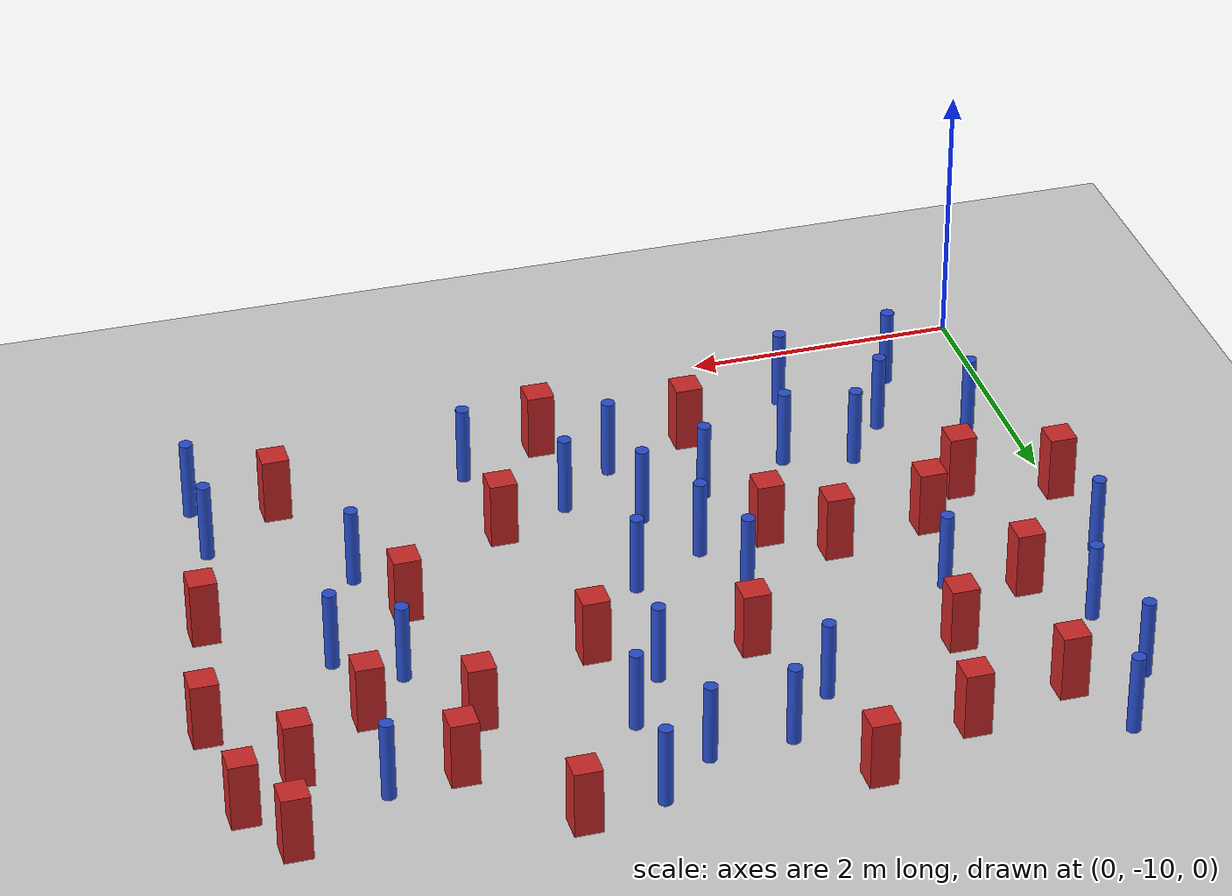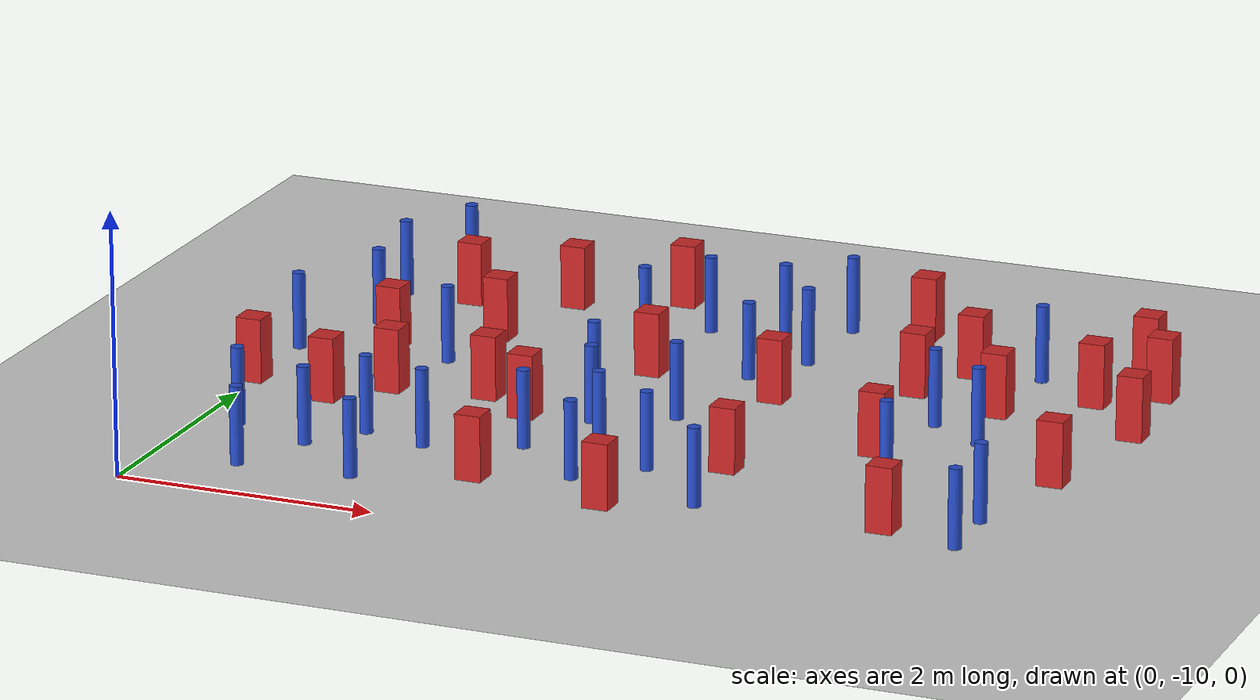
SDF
<sdf version="1.6">
 <world name="default">
  <model name="ground_plane">
   <static>1</static>
   <link name="link">
    <collision name="collision">
     <geometry><plane><normal>0 0 1</normal><size>100 100</size></plane></geometry>
     <surface><friction><ode><mu>100</mu><mu2>50</mu2></ode></friction></surface>
    </collision>
    <visual name="visual">
     <cast_shadows>0</cast_shadows>
     <geometry><plane><normal>0 0 1</normal><size>100 100</size></plane></geometry>
     <material>
      <ambient>1.0 1.0 1.0 1.0</ambient>
      <diffuse>0.8 0.8 0.8 1.0</diffuse>
      <specular>0.01 0.01 0.01 1.000000</specular>
     </material>
    </visual>
   </link>
  </model>
  <model name="pole_obstacle3">
   <static>true</static>
   <pose>3.68952256595 -5.76837566407 -9.47619616065e-06 5.49618799738e-07 2.3631041406e-07 -1.55090534801e-07</pose>
   <link name="link">
    <pose>0 0 0.3 0 -0 0</pose>
    <inertial>
     <mass>1</mass>
     <inertia><ixx>0.145833</ixx><ixy>0</ixy><ixz>0</ixz><iyy>0.145833</iyy><iyz>0</iyz><izz>0.125</izz></inertia>
    </inertial>
    <collision name="collision">
     <geometry><cylinder><radius>0.05</radius><length>.6</length></cylinder></geometry>
    </collision>
    <visual name="visual">
     <geometry><cylinder><radius>0.05</radius><length>.6</length></cylinder></geometry>
     <material>
      <script><name>Gazebo/Blue</name><uri>file://media/materials/scripts/gazebo.material</uri></script>
     </material>
    </visual>
   </link>
  </model>
  <model name="pole_obstacle4">
   <static>true</static>
   <pose>2.72592543453 -5.32273102294 -9.47619616065e-06 5.49618799738e-07 2.3631041406e-07 -1.55090534801e-07</pose>
   <link name="link">
    <pose>0 0 0.3 0 -0 0</pose>
    <inertial>
     <mass>1</mass>
     <inertia><ixx>0.145833</ixx><ixy>0</ixy><ixz>0</ixz><iyy>0.145833</iyy><iyz>0</iyz><izz>0.125</izz></inertia>
    </inertial>
    <collision name="collision">
     <geometry><cylinder><radius>0.05</radius><length>.6</length></cylinder></geometry>
    </collision>
    <visual name="visual">
     <geometry><cylinder><radius>0.05</radius><length>.6</length></cylinder></geometry>
     <material>
      <script><name>Gazebo/Blue</name><uri>file://media/materials/scripts/gazebo.material</uri></script>
     </material>
    </visual>
   </link>
  </model>
  <model name="pole_obstacle6">
   <static>true</static>
   <pose>-0.0224886271966 -6.85687499637 -9.47619616065e-06 5.49618799737e-07 2.36310414067e-07 -1.55090534797e-07</pose>
   <link name="link">
    <pose>0 0 0.3 0 -0 0</pose>
    <inertial>
     <mass>1</mass>
     <inertia><ixx>0.145833</ixx><ixy>0</ixy><ixz>0</ixz><iyy>0.145833</iyy><iyz>0</iyz><izz>0.125</izz></inertia>
    </inertial>
    <collision name="collision">
     <geometry><cylinder><radius>0.05</radius><length>.6</length></cylinder></geometry>
    </collision>
    <visual name="visual">
     <geometry><cylinder><radius>0.05</radius><length>.6</length></cylinder></geometry>
     <material>
      <script><name>Gazebo/Blue</name><uri>file://media/materials/scripts/gazebo.material</uri></script>
     </material>
    </visual>
   </link>
  </model>
  <model name="square_post_obstacle14">
   <static>true</static>
   <pose>1.53295186414 -5.11848974864 -6.11067671241e-07 -5.50515727128e-06 -8.79689657224e-07 2.37013304536e-05</pose>
   <link name="link">
    <pose>0 0 0.25 0 -0 0</pose>
    <inertial>
     <mass>100</mass>
     <inertia>
      <ixx>0.166667</ixx>
      <ixy>0</ixy>
      <ixz>0</ixz>
      <iyy>0.166667</iyy>
      <iyz>0</iyz>
      <izz>0.166667</izz>
     </inertia>
    </inertial>
    <collision name="collision"><geometry><box><size>.2 .2 .5</size></box></geometry></collision>
    <visual name="visual">
     <geometry><box><size>.2 .2 .5</size></box></geometry>
     <material>
      <script><name>Gazebo/Red</name><uri>file://media/materials/scripts/gazebo.material</uri></script>
     </material>
    </visual>
   </link>
  </model>
  <model name="square_post_obstacle22">
   <static>true</static>
   <pose>5.39535060356 -6.3227671218 -6.11067671241e-07 -5.50515727128e-06 -8.79689657224e-07 2.37013304536e-05</pose>
   <link name="link">
    <pose>0 0 0.25 0 -0 0</pose>
    <inertial>
     <mass>100</mass>
     <inertia>
      <ixx>0.166667</ixx>
      <ixy>0</ixy>
      <ixz>0</ixz>
      <iyy>0.166667</iyy>
      <iyz>0</iyz>
      <izz>0.166667</izz>
     </inertia>
    </inertial>
    <collision name="collision"><geometry><box><size>.2 .2 .5</size></box></geometry></collision>
    <visual name="visual">
     <geometry><box><size>.2 .2 .5</size></box></geometry>
     <material>
      <script><name>Gazebo/Red</name><uri>file://media/materials/scripts/gazebo.material</uri></script>
     </material>
    </visual>
   </link>
  </model>
  <model name="pole_obstacle14">
   <static>true</static>
   <pose>2.49761669103 -7.08939862629 -9.47619616065e-06 5.49618799738e-07 2.3631041406e-07 -1.55090534801e-07</pose>
   <link name="link">
    <pose>0 0 0.3 0 -0 0</pose>
    <inertial>
     <mass>1</mass>
     <inertia><ixx>0.145833</ixx><ixy>0</ixy><ixz>0</ixz><iyy>0.145833</iyy><iyz>0</iyz><izz>0.125</izz></inertia>
    </inertial>
    <collision name="collision">
     <geometry><cylinder><radius>0.05</radius><length>.6</length></cylinder></geometry>
    </collision>
    <visual name="visual">
     <geometry><cylinder><radius>0.05</radius><length>.6</length></cylinder></geometry>
     <material>
      <script><name>Gazebo/Blue</name><uri>file://media/materials/scripts/gazebo.material</uri></script>
     </material>
    </visual>
   </link>
  </model>
  <model name="square_post_obstacle31">
   <static>true</static>
   <pose>6.41488071471 -5.52194139991 -6.11067671241e-07 -5.50515727128e-06 -8.79689657224e-07 2.37013304536e-05</pose>
   <link name="link">
    <pose>0 0 0.25 0 -0 0</pose>
    <inertial>
     <mass>100</mass>
     <inertia>
      <ixx>0.166667</ixx>
      <ixy>0</ixy>
      <ixz>0</ixz>
      <iyy>0.166667</iyy>
      <iyz>0</iyz>
      <izz>0.166667</izz>
     </inertia>
    </inertial>
    <collision name="collision"><geometry><box><size>.2 .2 .5</size></box></geometry></collision>
    <visual name="visual">
     <geometry><box><size>.2 .2 .5</size></box></geometry>
     <material>
      <script><name>Gazebo/Red</name><uri>file://media/materials/scripts/gazebo.material</uri></script>
     </material>
    </visual>
   </link>
  </model>
  <model name="pole_obstacle36">
   <static>true</static>
   <pose>5.49110034325 -7.01529308881 -9.47619616065e-06 5.49618799737e-07 2.36310414037e-07 -1.55090534814e-07</pose>
   <link name="link">
    <pose>0 0 0.3 0 -0 0</pose>
    <inertial>
     <mass>1</mass>
     <inertia><ixx>0.145833</ixx><ixy>0</ixy><ixz>0</ixz><iyy>0.145833</iyy><iyz>0</iyz><izz>0.125</izz></inertia>
    </inertial>
    <collision name="collision">
     <geometry><cylinder><radius>0.05</radius><length>.6</length></cylinder></geometry>
    </collision>
    <visual name="visual">
     <geometry><cylinder><radius>0.05</radius><length>.6</length></cylinder></geometry>
     <material>
      <script><name>Gazebo/Blue</name><uri>file://media/materials/scripts/gazebo.material</uri></script>
     </material>
    </visual>
   </link>
  </model>
  <model name="square_post_obstacle36">
   <static>true</static>
   <pose>3.99212517721 -8.19487480356 -6.11067671241e-07 -5.50515727128e-06 -8.79689657224e-07 2.37013304536e-05</pose>
   <link name="link">
    <pose>0 0 0.25 0 -0 0</pose>
    <inertial>
     <mass>100</mass>
     <inertia>
      <ixx>0.166667</ixx>
      <ixy>0</ixy>
      <ixz>0</ixz>
      <iyy>0.166667</iyy>
      <iyz>0</iyz>
      <izz>0.166667</izz>
     </inertia>
    </inertial>
    <collision name="collision"><geometry><box><size>.2 .2 .5</size></box></geometry></collision>
    <visual name="visual">
     <geometry><box><size>.2 .2 .5</size></box></geometry>
     <material>
      <script><name>Gazebo/Red</name><uri>file://media/materials/scripts/gazebo.material</uri></script>
     </material>
    </visual>
   </link>
  </model>
  <model name="pole_obstacle38">
   <static>true</static>
   <pose>0.296966078168 -6.09641733267 -9.47619616065e-06 5.49618799737e-07 2.36310414067e-07 -1.55090534795e-07</pose>
   <link name="link">
    <pose>0 0 0.3 0 -0 0</pose>
    <inertial>
     <mass>1</mass>
     <inertia><ixx>0.145833</ixx><ixy>0</ixy><ixz>0</ixz><iyy>0.145833</iyy><iyz>0</iyz><izz>0.125</izz></inertia>
    </inertial>
    <collision name="collision">
     <geometry><cylinder><radius>0.05</radius><length>.6</length></cylinder></geometry>
    </collision>
    <visual name="visual">
     <geometry><cylinder><radius>0.05</radius><length>.6</length></cylinder></geometry>
     <material>
      <script><name>Gazebo/Blue</name><uri>file://media/materials/scripts/gazebo.material</uri></script>
     </material>
    </visual>
   </link>
  </model>
  <model name="square_post_obstacle41">
   <static>true</static>
   <pose>1.75843619097 -7.35909987337 -6.11067671241e-07 -5.50515727128e-06 -8.79689657224e-07 2.37013304536e-05</pose>
   <link name="link">
    <pose>0 0 0.25 0 -0 0</pose>
    <inertial>
     <mass>100</mass>
     <inertia>
      <ixx>0.166667</ixx>
      <ixy>0</ixy>
      <ixz>0</ixz>
      <iyy>0.166667</iyy>
      <iyz>0</iyz>
      <izz>0.166667</izz>
     </inertia>
    </inertial>
    <collision name="collision"><geometry><box><size>.2 .2 .5</size></box></geometry></collision>
    <visual name="visual">
     <geometry><box><size>.2 .2 .5</size></box></geometry>
     <material>
      <script><name>Gazebo/Red</name><uri>file://media/materials/scripts/gazebo.material</uri></script>
     </material>
    </visual>
   </link>
  </model>
  <model name="square_post_obstacle42">
   <static>true</static>
   <pose>2.67477833466 -6.40167193319 -6.11067671241e-07 -5.50515727128e-06 -8.79689657224e-07 2.37013304536e-05</pose>
   <link name="link">
    <pose>0 0 0.25 0 -0 0</pose>
    <inertial>
     <mass>100</mass>
     <inertia>
      <ixx>0.166667</ixx>
      <ixy>0</ixy>
      <ixz>0</ixz>
      <iyy>0.166667</iyy>
      <iyz>0</iyz>
      <izz>0.166667</izz>
     </inertia>
    </inertial>
    <collision name="collision"><geometry><box><size>.2 .2 .5</size></box></geometry></collision>
    <visual name="visual">
     <geometry><box><size>.2 .2 .5</size></box></geometry>
     <material>
      <script><name>Gazebo/Red</name><uri>file://media/materials/scripts/gazebo.material</uri></script>
     </material>
    </visual>
   </link>
  </model>
  <model name="pole_obstacle54">
   <static>true</static>
   <pose>6.06947348245 -9.11279143797 -9.47619616065e-06 5.49618799737e-07 2.36310414065e-07 -1.55090534796e-07</pose>
   <link name="link">
    <pose>0 0 0.3 0 -0 0</pose>
    <inertial>
     <mass>1</mass>
     <inertia><ixx>0.145833</ixx><ixy>0</ixy><ixz>0</ixz><iyy>0.145833</iyy><iyz>0</iyz><izz>0.125</izz></inertia>
    </inertial>
    <collision name="collision">
     <geometry><cylinder><radius>0.05</radius><length>.6</length></cylinder></geometry>
    </collision>
    <visual name="visual">
     <geometry><cylinder><radius>0.05</radius><length>.6</length></cylinder></geometry>
     <material>
      <script><name>Gazebo/Blue</name><uri>file://media/materials/scripts/gazebo.material</uri></script>
     </material>
    </visual>
   </link>
  </model>
  <model name="pole_obstacle58">
   <static>true</static>
   <pose>0.939054772979 -8.83326619158 -9.47619616065e-06 5.49618799737e-07 2.36310414038e-07 -1.55090534813e-07</pose>
   <link name="link">
    <pose>0 0 0.3 0 -0 0</pose>
    <inertial>
     <mass>1</mass>
     <inertia><ixx>0.145833</ixx><ixy>0</ixy><ixz>0</ixz><iyy>0.145833</iyy><iyz>0</iyz><izz>0.125</izz></inertia>
    </inertial>
    <collision name="collision">
     <geometry><cylinder><radius>0.05</radius><length>.6</length></cylinder></geometry>
    </collision>
    <visual name="visual">
     <geometry><cylinder><radius>0.05</radius><length>.6</length></cylinder></geometry>
     <material>
      <script><name>Gazebo/Blue</name><uri>file://media/materials/scripts/gazebo.material</uri></script>
     </material>
    </visual>
   </link>
  </model>
  <model name="square_post_obstacle74">
   <static>true</static>
   <pose>5.47576698785 -8.95069101723 -6.11067671241e-07 -5.50515727128e-06 -8.79689657224e-07 2.37013304536e-05</pose>
   <link name="link">
    <pose>0 0 0.25 0 -0 0</pose>
    <inertial>
     <mass>100</mass>
     <inertia>
      <ixx>0.166667</ixx>
      <ixy>0</ixy>
      <ixz>0</ixz>
      <iyy>0.166667</iyy>
      <iyz>0</iyz>
      <izz>0.166667</izz>
     </inertia>
    </inertial>
    <collision name="collision"><geometry><box><size>.2 .2 .5</size></box></geometry></collision>
    <visual name="visual">
     <geometry><box><size>.2 .2 .5</size></box></geometry>
     <material>
      <script><name>Gazebo/Red</name><uri>file://media/materials/scripts/gazebo.material</uri></script>
     </material>
    </visual>
   </link>
  </model>
  <model name="pole_obstacle73">
   <static>true</static>
   <pose>4.06406030413 -9.00445187488 -9.47619616065e-06 5.49618799737e-07 2.36310414065e-07 -1.55090534796e-07</pose>
   <link name="link">
    <pose>0 0 0.3 0 -0 0</pose>
    <inertial>
     <mass>1</mass>
     <inertia><ixx>0.145833</ixx><ixy>0</ixy><ixz>0</ixz><iyy>0.145833</iyy><iyz>0</iyz><izz>0.125</izz></inertia>
    </inertial>
    <collision name="collision">
     <geometry><cylinder><radius>0.05</radius><length>.6</length></cylinder></geometry>
    </collision>
    <visual name="visual">
     <geometry><cylinder><radius>0.05</radius><length>.6</length></cylinder></geometry>
     <material>
      <script><name>Gazebo/Blue</name><uri>file://media/materials/scripts/gazebo.material</uri></script>
     </material>
    </visual>
   </link>
  </model>
  <model name="pole_obstacle79">
   <static>true</static>
   <pose>2.68920330358 -7.603578546 -9.47619616065e-06 5.49618799738e-07 2.3631041406e-07 -1.55090534801e-07</pose>
   <link name="link">
    <pose>0 0 0.3 0 -0 0</pose>
    <inertial>
     <mass>1</mass>
     <inertia><ixx>0.145833</ixx><ixy>0</ixy><ixz>0</ixz><iyy>0.145833</iyy><iyz>0</iyz><izz>0.125</izz></inertia>
    </inertial>
    <collision name="collision">
     <geometry><cylinder><radius>0.05</radius><length>.6</length></cylinder></geometry>
    </collision>
    <visual name="visual">
     <geometry><cylinder><radius>0.05</radius><length>.6</length></cylinder></geometry>
     <material>
      <script><name>Gazebo/Blue</name><uri>file://media/materials/scripts/gazebo.material</uri></script>
     </material>
    </visual>
   </link>
  </model>
  <model name="pole_obstacle84">
   <static>true</static>
   <pose>1.75918652986 -8.56352422376 -9.47619616065e-06 5.49618799737e-07 2.36310414046e-07 -1.55090534809e-07</pose>
   <link name="link">
    <pose>0 0 0.3 0 -0 0</pose>
    <inertial>
     <mass>1</mass>
     <inertia><ixx>0.145833</ixx><ixy>0</ixy><ixz>0</ixz><iyy>0.145833</iyy><iyz>0</iyz><izz>0.125</izz></inertia>
    </inertial>
    <collision name="collision">
     <geometry><cylinder><radius>0.05</radius><length>.6</length></cylinder></geometry>
    </collision>
    <visual name="visual">
     <geometry><cylinder><radius>0.05</radius><length>.6</length></cylinder></geometry>
     <material>
      <script><name>Gazebo/Blue</name><uri>file://media/materials/scripts/gazebo.material</uri></script>
     </material>
    </visual>
   </link>
  </model>
  <model name="pole_obstacle85">
   <static>true</static>
   <pose>1.25535044332 -8.4408367496 -9.47619616065e-06 5.49618799737e-07 2.36310414046e-07 -1.55090534809e-07</pose>
   <link name="link">
    <pose>0 0 0.3 0 -0 0</pose>
    <inertial>
     <mass>1</mass>
     <inertia><ixx>0.145833</ixx><ixy>0</ixy><ixz>0</ixz><iyy>0.145833</iyy><iyz>0</iyz><izz>0.125</izz></inertia>
    </inertial>
    <collision name="collision">
     <geometry><cylinder><radius>0.05</radius><length>.6</length></cylinder></geometry>
    </collision>
    <visual name="visual">
     <geometry><cylinder><radius>0.05</radius><length>.6</length></cylinder></geometry>
     <material>
      <script><name>Gazebo/Blue</name><uri>file://media/materials/scripts/gazebo.material</uri></script>
     </material>
    </visual>
   </link>
  </model>
  <model name="pole_obstacle90">
   <static>true</static>
   <pose>2.44946880709 -8.30420754608 -9.4761961606e-06 5.49618799729e-07 2.36310414e-07 -1.55090534824e-07</pose>
   <link name="link">
    <pose>0 0 0.3 0 -0 0</pose>
    <inertial>
     <mass>1</mass>
     <inertia><ixx>0.145833</ixx><ixy>0</ixy><ixz>0</ixz><iyy>0.145833</iyy><iyz>0</iyz><izz>0.125</izz></inertia>
    </inertial>
    <collision name="collision">
     <geometry><cylinder><radius>0.05</radius><length>.6</length></cylinder></geometry>
    </collision>
    <visual name="visual">
     <geometry><cylinder><radius>0.05</radius><length>.6</length></cylinder></geometry>
     <material>
      <script><name>Gazebo/Blue</name><uri>file://media/materials/scripts/gazebo.material</uri></script>
     </material>
    </visual>
   </link>
  </model>
  <model name="pole_obstacle91">
   <static>true</static>
   <pose>3.2431976997 -7.30107362504 -9.47619616065e-06 5.49618799738e-07 2.3631041406e-07 -1.55090534801e-07</pose>
   <link name="link">
    <pose>0 0 0.3 0 -0 0</pose>
    <inertial>
     <mass>1</mass>
     <inertia><ixx>0.145833</ixx><ixy>0</ixy><ixz>0</ixz><iyy>0.145833</iyy><iyz>0</iyz><izz>0.125</izz></inertia>
    </inertial>
    <collision name="collision">
     <geometry><cylinder><radius>0.05</radius><length>.6</length></cylinder></geometry>
    </collision>
    <visual name="visual">
     <geometry><cylinder><radius>0.05</radius><length>.6</length></cylinder></geometry>
     <material>
      <script><name>Gazebo/Blue</name><uri>file://media/materials/scripts/gazebo.material</uri></script>
     </material>
    </visual>
   </link>
  </model>
  <model name="pole_obstacle92">
   <static>true</static>
   <pose>2.96707711484 -8.12069190604 -9.4761961606e-06 5.49618799729e-07 2.36310414e-07 -1.55090534824e-07</pose>
   <link name="link">
    <pose>0 0 0.3 0 -0 0</pose>
    <inertial>
     <mass>1</mass>
     <inertia><ixx>0.145833</ixx><ixy>0</ixy><ixz>0</ixz><iyy>0.145833</iyy><iyz>0</iyz><izz>0.125</izz></inertia>
    </inertial>
    <collision name="collision">
     <geometry><cylinder><radius>0.05</radius><length>.6</length></cylinder></geometry>
    </collision>
    <visual name="visual">
     <geometry><cylinder><radius>0.05</radius><length>.6</length></cylinder></geometry>
     <material>
      <script><name>Gazebo/Blue</name><uri>file://media/materials/scripts/gazebo.material</uri></script>
     </material>
    </visual>
   </link>
  </model>
  <model name="pole_obstacle93">
   <static>true</static>
   <pose>3.39663855941 -6.2433627364 -9.47619616065e-06 5.49618799738e-07 2.3631041406e-07 -1.55090534801e-07</pose>
   <link name="link">
    <pose>0 0 0.3 0 -0 0</pose>
    <inertial>
     <mass>1</mass>
     <inertia><ixx>0.145833</ixx><ixy>0</ixy><ixz>0</ixz><iyy>0.145833</iyy><iyz>0</iyz><izz>0.125</izz></inertia>
    </inertial>
    <collision name="collision">
     <geometry><cylinder><radius>0.05</radius><length>.6</length></cylinder></geometry>
    </collision>
    <visual name="visual">
     <geometry><cylinder><radius>0.05</radius><length>.6</length></cylinder></geometry>
     <material>
      <script><name>Gazebo/Blue</name><uri>file://media/materials/scripts/gazebo.material</uri></script>
     </material>
    </visual>
   </link>
  </model>
  <model name="pole_obstacle96">
   <static>true</static>
   <pose>0.306442332923 -8.62014487151 -9.47619616065e-06 5.49618799737e-07 2.36310414031e-07 -1.55090534818e-07</pose>
   <link name="link">
    <pose>0 0 0.3 0 -0 0</pose>
    <inertial>
     <mass>1</mass>
     <inertia><ixx>0.145833</ixx><ixy>0</ixy><ixz>0</ixz><iyy>0.145833</iyy><iyz>0</iyz><izz>0.125</izz></inertia>
    </inertial>
    <collision name="collision">
     <geometry><cylinder><radius>0.05</radius><length>.6</length></cylinder></geometry>
    </collision>
    <visual name="visual">
     <geometry><cylinder><radius>0.05</radius><length>.6</length></cylinder></geometry>
     <material>
      <script><name>Gazebo/Blue</name><uri>file://media/materials/scripts/gazebo.material</uri></script>
     </material>
    </visual>
   </link>
  </model>
  <model name="square_post_obstacle84">
   <static>true</static>
   <pose>0.760238394644 -5.33593640148 -6.11067671241e-07 -5.50515727128e-06 -8.79689657224e-07 2.37013304536e-05</pose>
   <link name="link">
    <pose>0 0 0.25 0 -0 0</pose>
    <inertial>
     <mass>100</mass>
     <inertia>
      <ixx>0.166667</ixx>
      <ixy>0</ixy>
      <ixz>0</ixz>
      <iyy>0.166667</iyy>
      <iyz>0</iyz>
      <izz>0.166667</izz>
     </inertia>
    </inertial>
    <collision name="collision"><geometry><box><size>.2 .2 .5</size></box></geometry></collision>
    <visual name="visual">
     <geometry><box><size>.2 .2 .5</size></box></geometry>
     <material>
      <script><name>Gazebo/Red</name><uri>file://media/materials/scripts/gazebo.material</uri></script>
     </material>
    </visual>
   </link>
  </model>
  <model name="pole_obstacle97">
   <static>true</static>
   <pose>1.15483982126 -6.73573322134 -9.47619616065e-06 5.49618799737e-07 2.36310414061e-07 -1.550905348e-07</pose>
   <link name="link">
    <pose>0 0 0.3 0 -0 0</pose>
    <inertial>
     <mass>1</mass>
     <inertia><ixx>0.145833</ixx><ixy>0</ixy><ixz>0</ixz><iyy>0.145833</iyy><iyz>0</iyz><izz>0.125</izz></inertia>
    </inertial>
    <collision name="collision">
     <geometry><cylinder><radius>0.05</radius><length>.6</length></cylinder></geometry>
    </collision>
    <visual name="visual">
     <geometry><cylinder><radius>0.05</radius><length>.6</length></cylinder></geometry>
     <material>
      <script><name>Gazebo/Blue</name><uri>file://media/materials/scripts/gazebo.material</uri></script>
     </material>
    </visual>
   </link>
  </model>
  <model name="square_post_obstacle89">
   <static>true</static>
   <pose>6.26856388387 -7.58559985948 -6.11067671241e-07 -5.50515727128e-06 -8.79689657224e-07 2.37013304536e-05</pose>
   <link name="link">
    <pose>0 0 0.25 0 -0 0</pose>
    <inertial>
     <mass>100</mass>
     <inertia>
      <ixx>0.166667</ixx>
      <ixy>0</ixy>
      <ixz>0</ixz>
      <iyy>0.166667</iyy>
      <iyz>0</iyz>
      <izz>0.166667</izz>
     </inertia>
    </inertial>
    <collision name="collision"><geometry><box><size>.2 .2 .5</size></box></geometry></collision>
    <visual name="visual">
     <geometry><box><size>.2 .2 .5</size></box></geometry>
     <material>
      <script><name>Gazebo/Red</name><uri>file://media/materials/scripts/gazebo.material</uri></script>
     </material>
    </visual>
   </link>
  </model>
  <model name="square_post_obstacle90">
   <static>true</static>
   <pose>0.626417276849 -6.5617396612 -6.11067671241e-07 -5.50515727128e-06 -8.79689657224e-07 2.37013304536e-05</pose>
   <link name="link">
    <pose>0 0 0.25 0 -0 0</pose>
    <inertial>
     <mass>100</mass>
     <inertia>
      <ixx>0.166667</ixx>
      <ixy>0</ixy>
      <ixz>0</ixz>
      <iyy>0.166667</iyy>
      <iyz>0</iyz>
      <izz>0.166667</izz>
     </inertia>
    </inertial>
    <collision name="collision"><geometry><box><size>.2 .2 .5</size></box></geometry></collision>
    <visual name="visual">
     <geometry><box><size>.2 .2 .5</size></box></geometry>
     <material>
      <script><name>Gazebo/Red</name><uri>file://media/materials/scripts/gazebo.material</uri></script>
     </material>
    </visual>
   </link>
  </model>
  <model name="square_post_obstacle96">
   <static>true</static>
   <pose>0.663287669542 -7.85111471644 -6.11067671241e-07 -5.50515727128e-06 -8.79689657224e-07 2.37013304536e-05</pose>
   <link name="link">
    <pose>0 0 0.25 0 -0 0</pose>
    <inertial>
     <mass>100</mass>
     <inertia>
      <ixx>0.166667</ixx>
      <ixy>0</ixy>
      <ixz>0</ixz>
      <iyy>0.166667</iyy>
      <iyz>0</iyz>
      <izz>0.166667</izz>
     </inertia>
    </inertial>
    <collision name="collision"><geometry><box><size>.2 .2 .5</size></box></geometry></collision>
    <visual name="visual">
     <geometry><box><size>.2 .2 .5</size></box></geometry>
     <material>
      <script><name>Gazebo/Red</name><uri>file://media/materials/scripts/gazebo.material</uri></script>
     </material>
    </visual>
   </link>
  </model>
  <model name="pole_obstacle133">
   <static>true</static>
   <pose>5.12789587614 -7.95323270963 -9.47619616065e-06 5.49618799738e-07 2.36310414051e-07 -1.55090534804e-07</pose>
   <link name="link">
    <pose>0 0 0.3 0 -0 0</pose>
    <inertial>
     <mass>1</mass>
     <inertia><ixx>0.145833</ixx><ixy>0</ixy><ixz>0</ixz><iyy>0.145833</iyy><iyz>0</iyz><izz>0.125</izz></inertia>
    </inertial>
    <collision name="collision">
     <geometry><cylinder><radius>0.05</radius><length>.6</length></cylinder></geometry>
    </collision>
    <visual name="visual">
     <geometry><cylinder><radius>0.05</radius><length>.6</length></cylinder></geometry>
     <material>
      <script><name>Gazebo/Blue</name><uri>file://media/materials/scripts/gazebo.material</uri></script>
     </material>
    </visual>
   </link>
  </model>
  <model name="square_post_obstacle122">
   <static>true</static>
   <pose>2.36671958527 -9.03684008959 -6.11067671241e-07 -5.50515727128e-06 -8.79689657224e-07 2.37013304536e-05</pose>
   <link name="link">
    <pose>0 0 0.25 0 -0 0</pose>
    <inertial>
     <mass>100</mass>
     <inertia>
      <ixx>0.166667</ixx>
      <ixy>0</ixy>
      <ixz>0</ixz>
      <iyy>0.166667</iyy>
      <iyz>0</iyz>
      <izz>0.166667</izz>
     </inertia>
    </inertial>
    <collision name="collision"><geometry><box><size>.2 .2 .5</size></box></geometry></collision>
    <visual name="visual">
     <geometry><box><size>.2 .2 .5</size></box></geometry>
     <material>
      <script><name>Gazebo/Red</name><uri>file://media/materials/scripts/gazebo.material</uri></script>
     </material>
    </visual>
   </link>
  </model>
  <model name="square_post_obstacle127">
   <static>true</static>
   <pose>3.74791220726 -6.62882537302 -6.11067671241e-07 -5.50515727128e-06 -8.79689657224e-07 2.37013304536e-05</pose>
   <link name="link">
    <pose>0 0 0.25 0 -0 0</pose>
    <inertial>
     <mass>100</mass>
     <inertia>
      <ixx>0.166667</ixx>
      <ixy>0</ixy>
      <ixz>0</ixz>
      <iyy>0.166667</iyy>
      <iyz>0</iyz>
      <izz>0.166667</izz>
     </inertia>
    </inertial>
    <collision name="collision"><geometry><box><size>.2 .2 .5</size></box></geometry></collision>
    <visual name="visual">
     <geometry><box><size>.2 .2 .5</size></box></geometry>
     <material>
      <script><name>Gazebo/Red</name><uri>file://media/materials/scripts/gazebo.material</uri></script>
     </material>
    </visual>
   </link>
  </model>
  <model name="square_post_obstacle128">
   <static>true</static>
   <pose>2.17887424502 -7.65401673229 -6.11067671241e-07 -5.50515727128e-06 -8.79689657224e-07 2.37013304536e-05</pose>
   <link name="link">
    <pose>0 0 0.25 0 -0 0</pose>
    <inertial>
     <mass>100</mass>
     <inertia>
      <ixx>0.166667</ixx>
      <ixy>0</ixy>
      <ixz>0</ixz>
      <iyy>0.166667</iyy>
      <iyz>0</iyz>
      <izz>0.166667</izz>
     </inertia>
    </inertial>
    <collision name="collision"><geometry><box><size>.2 .2 .5</size></box></geometry></collision>
    <visual name="visual">
     <geometry><box><size>.2 .2 .5</size></box></geometry>
     <material>
      <script><name>Gazebo/Red</name><uri>file://media/materials/scripts/gazebo.material</uri></script>
     </material>
    </visual>
   </link>
  </model>
  <model name="square_post_obstacle129">
   <static>true</static>
   <pose>4.30484090907 -4.83189297443 -6.11067671241e-07 -5.50515727128e-06 -8.79689657224e-07 2.37013304536e-05</pose>
   <link name="link">
    <pose>0 0 0.25 0 -0 0</pose>
    <inertial>
     <mass>100</mass>
     <inertia>
      <ixx>0.166667</ixx>
      <ixy>0</ixy>
      <ixz>0</ixz>
      <iyy>0.166667</iyy>
      <iyz>0</iyz>
      <izz>0.166667</izz>
     </inertia>
    </inertial>
    <collision name="collision"><geometry><box><size>.2 .2 .5</size></box></geometry></collision>
    <visual name="visual">
     <geometry><box><size>.2 .2 .5</size></box></geometry>
     <material>
      <script><name>Gazebo/Red</name><uri>file://media/materials/scripts/gazebo.material</uri></script>
     </material>
    </visual>
   </link>
  </model>
  <model name="square_post_obstacle139">
   <static>true</static>
   <pose>4.94100180102 -5.54954437314 -6.11067671241e-07 -5.50515727128e-06 -8.79689657224e-07 2.37013304536e-05</pose>
   <link name="link">
    <pose>0 0 0.25 0 -0 0</pose>
    <inertial>
     <mass>100</mass>
     <inertia>
      <ixx>0.166667</ixx>
      <ixy>0</ixy>
      <ixz>0</ixz>
      <iyy>0.166667</iyy>
      <iyz>0</iyz>
      <izz>0.166667</izz>
     </inertia>
    </inertial>
    <collision name="collision"><geometry><box><size>.2 .2 .5</size></box></geometry></collision>
    <visual name="visual">
     <geometry><box><size>.2 .2 .5</size></box></geometry>
     <material>
      <script><name>Gazebo/Red</name><uri>file://media/materials/scripts/gazebo.material</uri></script>
     </material>
    </visual>
   </link>
  </model>
  <model name="pole_obstacle149">
   <static>true</static>
   <pose>2.35251180094 -5.73737978438 -9.47619616065e-06 5.49618799738e-07 2.3631041406e-07 -1.55090534801e-07</pose>
   <link name="link">
    <pose>0 0 0.3 0 -0 0</pose>
    <inertial>
     <mass>1</mass>
     <inertia><ixx>0.145833</ixx><ixy>0</ixy><ixz>0</ixz><iyy>0.145833</iyy><iyz>0</iyz><izz>0.125</izz></inertia>
    </inertial>
    <collision name="collision">
     <geometry><cylinder><radius>0.05</radius><length>.6</length></cylinder></geometry>
    </collision>
    <visual name="visual">
     <geometry><cylinder><radius>0.05</radius><length>.6</length></cylinder></geometry>
     <material>
      <script><name>Gazebo/Blue</name><uri>file://media/materials/scripts/gazebo.material</uri></script>
     </material>
    </visual>
   </link>
  </model>
  <model name="pole_obstacle153">
   <static>true</static>
   <pose>5.4538998448 -5.48898073733 -9.47619616065e-06 5.49618799737e-07 2.36310414037e-07 -1.55090534814e-07</pose>
   <link name="link">
    <pose>0 0 0.3 0 -0 0</pose>
    <inertial>
     <mass>1</mass>
     <inertia><ixx>0.145833</ixx><ixy>0</ixy><ixz>0</ixz><iyy>0.145833</iyy><iyz>0</iyz><izz>0.125</izz></inertia>
    </inertial>
    <collision name="collision">
     <geometry><cylinder><radius>0.05</radius><length>.6</length></cylinder></geometry>
    </collision>
    <visual name="visual">
     <geometry><cylinder><radius>0.05</radius><length>.6</length></cylinder></geometry>
     <material>
      <script><name>Gazebo/Blue</name><uri>file://media/materials/scripts/gazebo.material</uri></script>
     </material>
    </visual>
   </link>
  </model>
  <model name="square_post_obstacle143">
   <static>true</static>
   <pose>6.16243156247 -5.08975223422 -6.11067671241e-07 -5.50515727128e-06 -8.79689657224e-07 2.37013304536e-05</pose>
   <link name="link">
    <pose>0 0 0.25 0 -0 0</pose>
    <inertial>
     <mass>100</mass>
     <inertia>
      <ixx>0.166667</ixx>
      <ixy>0</ixy>
      <ixz>0</ixz>
      <iyy>0.166667</iyy>
      <iyz>0</iyz>
      <izz>0.166667</izz>
     </inertia>
    </inertial>
    <collision name="collision"><geometry><box><size>.2 .2 .5</size></box></geometry></collision>
    <visual name="visual">
     <geometry><box><size>.2 .2 .5</size></box></geometry>
     <material>
      <script><name>Gazebo/Red</name><uri>file://media/materials/scripts/gazebo.material</uri></script>
     </material>
    </visual>
   </link>
  </model>
  <model name="pole_obstacle157">
   <static>true</static>
   <pose>1.54506598867 -9.35641855859 -9.47619616065e-06 5.49618799737e-07 2.36310414046e-07 -1.55090534809e-07</pose>
   <link name="link">
    <pose>0 0 0.3 0 -0 0</pose>
    <inertial>
     <mass>1</mass>
     <inertia><ixx>0.145833</ixx><ixy>0</ixy><ixz>0</ixz><iyy>0.145833</iyy><iyz>0</iyz><izz>0.125</izz></inertia>
    </inertial>
    <collision name="collision">
     <geometry><cylinder><radius>0.05</radius><length>.6</length></cylinder></geometry>
    </collision>
    <visual name="visual">
     <geometry><cylinder><radius>0.05</radius><length>.6</length></cylinder></geometry>
     <material>
      <script><name>Gazebo/Blue</name><uri>file://media/materials/scripts/gazebo.material</uri></script>
     </material>
    </visual>
   </link>
  </model>
  <model name="pole_obstacle159">
   <static>true</static>
   <pose>6.05515680634 -8.5467071727 -9.47619616065e-06 5.49618799737e-07 2.36310414065e-07 -1.55090534796e-07</pose>
   <link name="link">
    <pose>0 0 0.3 0 -0 0</pose>
    <inertial>
     <mass>1</mass>
     <inertia><ixx>0.145833</ixx><ixy>0</ixy><ixz>0</ixz><iyy>0.145833</iyy><iyz>0</iyz><izz>0.125</izz></inertia>
    </inertial>
    <collision name="collision">
     <geometry><cylinder><radius>0.05</radius><length>.6</length></cylinder></geometry>
    </collision>
    <visual name="visual">
     <geometry><cylinder><radius>0.05</radius><length>.6</length></cylinder></geometry>
     <material>
      <script><name>Gazebo/Blue</name><uri>file://media/materials/scripts/gazebo.material</uri></script>
     </material>
    </visual>
   </link>
  </model>
  <model name="square_post_obstacle156">
   <static>true</static>
   <pose>4.86515033149 -7.46599191735 -6.11067671241e-07 -5.50515727128e-06 -8.79689657224e-07 2.37013304536e-05</pose>
   <link name="link">
    <pose>0 0 0.25 0 -0 0</pose>
    <inertial>
     <mass>100</mass>
     <inertia>
      <ixx>0.166667</ixx>
      <ixy>0</ixy>
      <ixz>0</ixz>
      <iyy>0.166667</iyy>
      <iyz>0</iyz>
      <izz>0.166667</izz>
     </inertia>
    </inertial>
    <collision name="collision"><geometry><box><size>.2 .2 .5</size></box></geometry></collision>
    <visual name="visual">
     <geometry><box><size>.2 .2 .5</size></box></geometry>
     <material>
      <script><name>Gazebo/Red</name><uri>file://media/materials/scripts/gazebo.material</uri></script>
     </material>
    </visual>
   </link>
  </model>
  <model name="square_post_obstacle158">
   <static>true</static>
   <pose>6.48584090173 -6.43876717457 -6.11067671241e-07 -5.50515727128e-06 -8.79689657224e-07 2.37013304536e-05</pose>
   <link name="link">
    <pose>0 0 0.25 0 -0 0</pose>
    <inertial>
     <mass>100</mass>
     <inertia>
      <ixx>0.166667</ixx>
      <ixy>0</ixy>
      <ixz>0</ixz>
      <iyy>0.166667</iyy>
      <iyz>0</iyz>
      <izz>0.166667</izz>
     </inertia>
    </inertial>
    <collision name="collision"><geometry><box><size>.2 .2 .5</size></box></geometry></collision>
    <visual name="visual">
     <geometry><box><size>.2 .2 .5</size></box></geometry>
     <material>
      <script><name>Gazebo/Red</name><uri>file://media/materials/scripts/gazebo.material</uri></script>
     </material>
    </visual>
   </link>
  </model>
  <model name="pole_obstacle168">
   <static>true</static>
   <pose>3.02860400557 -8.7966375491 -9.4761961606e-06 5.49618799729e-07 2.36310414e-07 -1.55090534824e-07</pose>
   <link name="link">
    <pose>0 0 0.3 0 -0 0</pose>
    <inertial>
     <mass>1</mass>
     <inertia><ixx>0.145833</ixx><ixy>0</ixy><ixz>0</ixz><iyy>0.145833</iyy><iyz>0</iyz><izz>0.125</izz></inertia>
    </inertial>
    <collision name="collision">
     <geometry><cylinder><radius>0.05</radius><length>.6</length></cylinder></geometry>
    </collision>
    <visual name="visual">
     <geometry><cylinder><radius>0.05</radius><length>.6</length></cylinder></geometry>
     <material>
      <script><name>Gazebo/Blue</name><uri>file://media/materials/scripts/gazebo.material</uri></script>
     </material>
    </visual>
   </link>
  </model>
  <model name="square_post_obstacle172">
   <static>true</static>
   <pose>1.29186523109 -6.05742972897 -6.11067671241e-07 -5.50515727128e-06 -8.79689657224e-07 2.37013304536e-05</pose>
   <link name="link">
    <pose>0 0 0.25 0 -0 0</pose>
    <inertial>
     <mass>100</mass>
     <inertia>
      <ixx>0.166667</ixx>
      <ixy>0</ixy>
      <ixz>0</ixz>
      <iyy>0.166667</iyy>
      <iyz>0</iyz>
      <izz>0.166667</izz>
     </inertia>
    </inertial>
    <collision name="collision"><geometry><box><size>.2 .2 .5</size></box></geometry></collision>
    <visual name="visual">
     <geometry><box><size>.2 .2 .5</size></box></geometry>
     <material>
      <script><name>Gazebo/Red</name><uri>file://media/materials/scripts/gazebo.material</uri></script>
     </material>
    </visual>
   </link>
  </model>
  <model name="square_post_obstacle174">
   <static>true</static>
   <pose>4.68182415869 -6.10198123016 -6.11067671241e-07 -5.50515727128e-06 -8.79689657224e-07 2.37013304536e-05</pose>
   <link name="link">
    <pose>0 0 0.25 0 -0 0</pose>
    <inertial>
     <mass>100</mass>
     <inertia>
      <ixx>0.166667</ixx>
      <ixy>0</ixy>
      <ixz>0</ixz>
      <iyy>0.166667</iyy>
      <iyz>0</iyz>
      <izz>0.166667</izz>
     </inertia>
    </inertial>
    <collision name="collision"><geometry><box><size>.2 .2 .5</size></box></geometry></collision>
    <visual name="visual">
     <geometry><box><size>.2 .2 .5</size></box></geometry>
     <material>
      <script><name>Gazebo/Red</name><uri>file://media/materials/scripts/gazebo.material</uri></script>
     </material>
    </visual>
   </link>
  </model>
  <model name="square_post_obstacle175">
   <static>true</static>
   <pose>2.30917358353 -4.77756342503 -6.11067671241e-07 -5.50515727128e-06 -8.79689657224e-07 2.37013304536e-05</pose>
   <link name="link">
    <pose>0 0 0.25 0 -0 0</pose>
    <inertial>
     <mass>100</mass>
     <inertia>
      <ixx>0.166667</ixx>
      <ixy>0</ixy>
      <ixz>0</ixz>
      <iyy>0.166667</iyy>
      <iyz>0</iyz>
      <izz>0.166667</izz>
     </inertia>
    </inertial>
    <collision name="collision"><geometry><box><size>.2 .2 .5</size></box></geometry></collision>
    <visual name="visual">
     <geometry><box><size>.2 .2 .5</size></box></geometry>
     <material>
      <script><name>Gazebo/Red</name><uri>file://media/materials/scripts/gazebo.material</uri></script>
     </material>
    </visual>
   </link>
  </model>
  <model name="square_post_obstacle180">
   <static>true</static>
   <pose>1.0241367823 -7.47550257791 -6.11067671241e-07 -5.50515727128e-06 -8.79689657224e-07 2.37013304536e-05</pose>
   <link name="link">
    <pose>0 0 0.25 0 -0 0</pose>
    <inertial>
     <mass>100</mass>
     <inertia>
      <ixx>0.166667</ixx>
      <ixy>0</ixy>
      <ixz>0</ixz>
      <iyy>0.166667</iyy>
      <iyz>0</iyz>
      <izz>0.166667</izz>
     </inertia>
    </inertial>
    <collision name="collision"><geometry><box><size>.2 .2 .5</size></box></geometry></collision>
    <visual name="visual">
     <geometry><box><size>.2 .2 .5</size></box></geometry>
     <material>
      <script><name>Gazebo/Red</name><uri>file://media/materials/scripts/gazebo.material</uri></script>
     </material>
    </visual>
   </link>
  </model>
  <model name="square_post_obstacle187">
   <static>true</static>
   <pose>-0.0263680392818 -7.64492994904 -6.11067671241e-07 -5.50515727128e-06 -8.79689657224e-07 2.37013304536e-05</pose>
   <link name="link">
    <pose>0 0 0.25 0 -0 0</pose>
    <inertial>
     <mass>100</mass>
     <inertia>
      <ixx>0.166667</ixx>
      <ixy>0</ixy>
      <ixz>0</ixz>
      <iyy>0.166667</iyy>
      <iyz>0</iyz>
      <izz>0.166667</izz>
     </inertia>
    </inertial>
    <collision name="collision"><geometry><box><size>.2 .2 .5</size></box></geometry></collision>
    <visual name="visual">
     <geometry><box><size>.2 .2 .5</size></box></geometry>
     <material>
      <script><name>Gazebo/Red</name><uri>file://media/materials/scripts/gazebo.material</uri></script>
     </material>
    </visual>
   </link>
  </model>
  <model name="square_post_obstacle195">
   <static>true</static>
   <pose>5.98888837521 -5.8372686085 -6.11067671241e-07 -5.50515727128e-06 -8.79689657224e-07 2.37013304536e-05</pose>
   <link name="link">
    <pose>0 0 0.25 0 -0 0</pose>
    <inertial>
     <mass>100</mass>
     <inertia>
      <ixx>0.166667</ixx>
      <ixy>0</ixy>
      <ixz>0</ixz>
      <iyy>0.166667</iyy>
      <iyz>0</iyz>
      <izz>0.166667</izz>
     </inertia>
    </inertial>
    <collision name="collision"><geometry><box><size>.2 .2 .5</size></box></geometry></collision>
    <visual name="visual">
     <geometry><box><size>.2 .2 .5</size></box></geometry>
     <material>
      <script><name>Gazebo/Red</name><uri>file://media/materials/scripts/gazebo.material</uri></script>
     </material>
    </visual>
   </link>
  </model>
  <model name="pole_obstacle193">
   <static>true</static>
   <pose>0.50657972095 -4.80165273007 -9.47619616065e-06 5.49618799737e-07 2.36310414064e-07 -1.55090534796e-07</pose>
   <link name="link">
    <pose>0 0 0.3 0 -0 0</pose>
    <inertial>
     <mass>1</mass>
     <inertia><ixx>0.145833</ixx><ixy>0</ixy><ixz>0</ixz><iyy>0.145833</iyy><iyz>0</iyz><izz>0.125</izz></inertia>
    </inertial>
    <collision name="collision">
     <geometry><cylinder><radius>0.05</radius><length>.6</length></cylinder></geometry>
    </collision>
    <visual name="visual">
     <geometry><cylinder><radius>0.05</radius><length>.6</length></cylinder></geometry>
     <material>
      <script><name>Gazebo/Blue</name><uri>file://media/materials/scripts/gazebo.material</uri></script>
     </material>
    </visual>
   </link>
  </model>
  <model name="square_post_obstacle209">
   <static>true</static>
   <pose>3.43973507002 -9.24030457916 -6.11067671241e-07 -5.50515727128e-06 -8.79689657224e-07 2.37013304536e-05</pose>
   <link name="link">
    <pose>0 0 0.25 0 -0 0</pose>
    <inertial>
     <mass>100</mass>
     <inertia>
      <ixx>0.166667</ixx>
      <ixy>0</ixy>
      <ixz>0</ixz>
      <iyy>0.166667</iyy>
      <iyz>0</iyz>
      <izz>0.166667</izz>
     </inertia>
    </inertial>
    <collision name="collision"><geometry><box><size>.2 .2 .5</size></box></geometry></collision>
    <visual name="visual">
     <geometry><box><size>.2 .2 .5</size></box></geometry>
     <material>
      <script><name>Gazebo/Red</name><uri>file://media/materials/scripts/gazebo.material</uri></script>
     </material>
    </visual>
   </link>
  </model>
  <model name="pole_obstacle200">
   <static>true</static>
   <pose>3.46001580762 -8.41282907296 -9.4761961606e-06 5.49618799729e-07 2.36310414e-07 -1.55090534824e-07</pose>
   <link name="link">
    <pose>0 0 0.3 0 -0 0</pose>
    <inertial>
     <mass>1</mass>
     <inertia><ixx>0.145833</ixx><ixy>0</ixy><ixz>0</ixz><iyy>0.145833</iyy><iyz>0</iyz><izz>0.125</izz></inertia>
    </inertial>
    <collision name="collision">
     <geometry><cylinder><radius>0.05</radius><length>.6</length></cylinder></geometry>
    </collision>
    <visual name="visual">
     <geometry><cylinder><radius>0.05</radius><length>.6</length></cylinder></geometry>
     <material>
      <script><name>Gazebo/Blue</name><uri>file://media/materials/scripts/gazebo.material</uri></script>
     </material>
    </visual>
   </link>
  </model>
  <model name="pole_obstacle204">
   <static>true</static>
   <pose>5.05546005957 -6.73210284948 -9.47619616065e-06 5.49618799737e-07 2.36310414037e-07 -1.55090534814e-07</pose>
   <link name="link">
    <pose>0 0 0.3 0 -0 0</pose>
    <inertial>
     <mass>1</mass>
     <inertia><ixx>0.145833</ixx><ixy>0</ixy><ixz>0</ixz><iyy>0.145833</iyy><iyz>0</iyz><izz>0.125</izz></inertia>
    </inertial>
    <collision name="collision">
     <geometry><cylinder><radius>0.05</radius><length>.6</length></cylinder></geometry>
    </collision>
    <visual name="visual">
     <geometry><cylinder><radius>0.05</radius><length>.6</length></cylinder></geometry>
     <material>
      <script><name>Gazebo/Blue</name><uri>file://media/materials/scripts/gazebo.material</uri></script>
     </material>
    </visual>
   </link>
  </model>
  <model name="pole_obstacle207">
   <static>true</static>
   <pose>3.73391066746 -4.92424192833 -9.47619616065e-06 5.49618799738e-07 2.3631041406e-07 -1.55090534801e-07</pose>
   <link name="link">
    <pose>0 0 0.3 0 -0 0</pose>
    <inertial>
     <mass>1</mass>
     <inertia><ixx>0.145833</ixx><ixy>0</ixy><ixz>0</ixz><iyy>0.145833</iyy><iyz>0</iyz><izz>0.125</izz></inertia>
    </inertial>
    <collision name="collision">
     <geometry><cylinder><radius>0.05</radius><length>.6</length></cylinder></geometry>
    </collision>
    <visual name="visual">
     <geometry><cylinder><radius>0.05</radius><length>.6</length></cylinder></geometry>
     <material>
      <script><name>Gazebo/Blue</name><uri>file://media/materials/scripts/gazebo.material</uri></script>
     </material>
    </visual>
   </link>
  </model>
  <model name="pole_obstacle210">
   <static>true</static>
   <pose>0.674425085571 -9.41851103414 -9.47619616065e-06 5.49618799737e-07 2.36310414038e-07 -1.55090534813e-07</pose>
   <link name="link">
    <pose>0 0 0.3 0 -0 0</pose>
    <inertial>
     <mass>1</mass>
     <inertia><ixx>0.145833</ixx><ixy>0</ixy><ixz>0</ixz><iyy>0.145833</iyy><iyz>0</iyz><izz>0.125</izz></inertia>
    </inertial>
    <collision name="collision">
     <geometry><cylinder><radius>0.05</radius><length>.6</length></cylinder></geometry>
    </collision>
    <visual name="visual">
     <geometry><cylinder><radius>0.05</radius><length>.6</length></cylinder></geometry>
     <material>
      <script><name>Gazebo/Blue</name><uri>file://media/materials/scripts/gazebo.material</uri></script>
     </material>
    </visual>
   </link>
  </model>
  <model name="pole_obstacle216">
   <static>true</static>
   <pose>3.32074399282 -5.28405103124 -9.47619616065e-06 5.49618799738e-07 2.3631041406e-07 -1.55090534801e-07</pose>
   <link name="link">
    <pose>0 0 0.3 0 -0 0</pose>
    <inertial>
     <mass>1</mass>
     <inertia><ixx>0.145833</ixx><ixy>0</ixy><ixz>0</ixz><iyy>0.145833</iyy><iyz>0</iyz><izz>0.125</izz></inertia>
    </inertial>
    <collision name="collision">
     <geometry><cylinder><radius>0.05</radius><length>.6</length></cylinder></geometry>
    </collision>
    <visual name="visual">
     <geometry><cylinder><radius>0.05</radius><length>.6</length></cylinder></geometry>
     <material>
      <script><name>Gazebo/Blue</name><uri>file://media/materials/scripts/gazebo.material</uri></script>
     </material>
    </visual>
   </link>
  </model>
  <model name="pole_obstacle218">
   <static>true</static>
   <pose>0.201615075084 -5.36772529498 -9.47619616065e-06 5.49618799737e-07 2.36310414069e-07 -1.55090534795e-07</pose>
   <link name="link">
    <pose>0 0 0.3 0 -0 0</pose>
    <inertial>
     <mass>1</mass>
     <inertia><ixx>0.145833</ixx><ixy>0</ixy><ixz>0</ixz><iyy>0.145833</iyy><iyz>0</iyz><izz>0.125</izz></inertia>
    </inertial>
    <collision name="collision">
     <geometry><cylinder><radius>0.05</radius><length>.6</length></cylinder></geometry>
    </collision>
    <visual name="visual">
     <geometry><cylinder><radius>0.05</radius><length>.6</length></cylinder></geometry>
     <material>
      <script><name>Gazebo/Blue</name><uri>file://media/materials/scripts/gazebo.material</uri></script>
     </material>
    </visual>
   </link>
  </model>
 </world>
</sdf>
